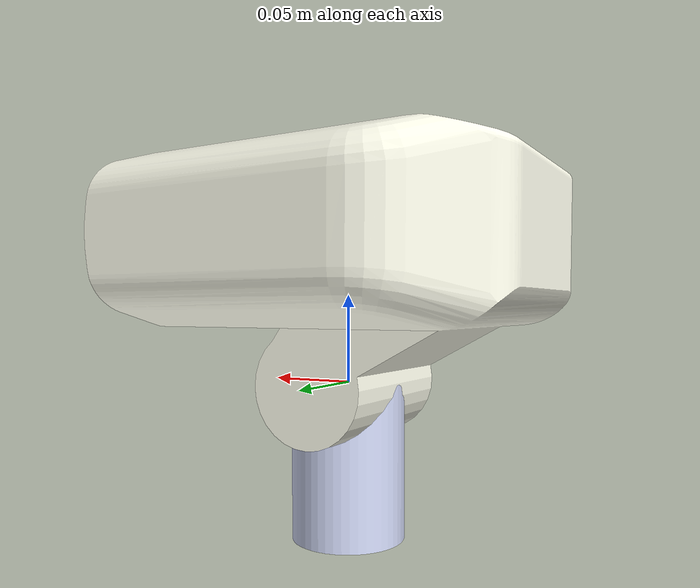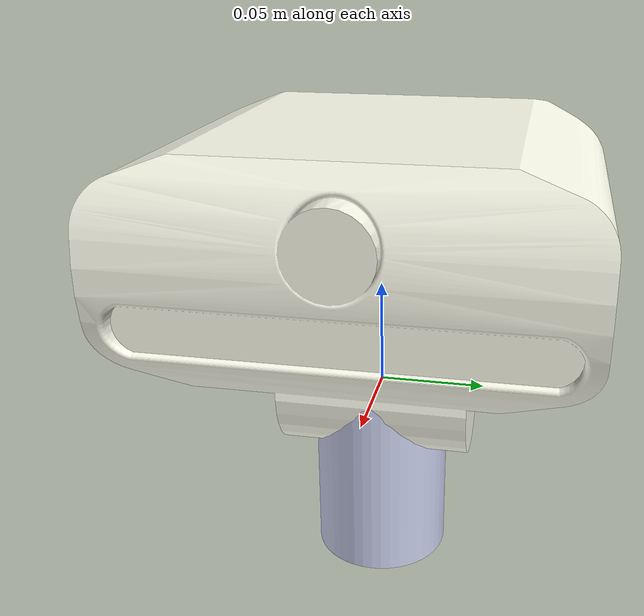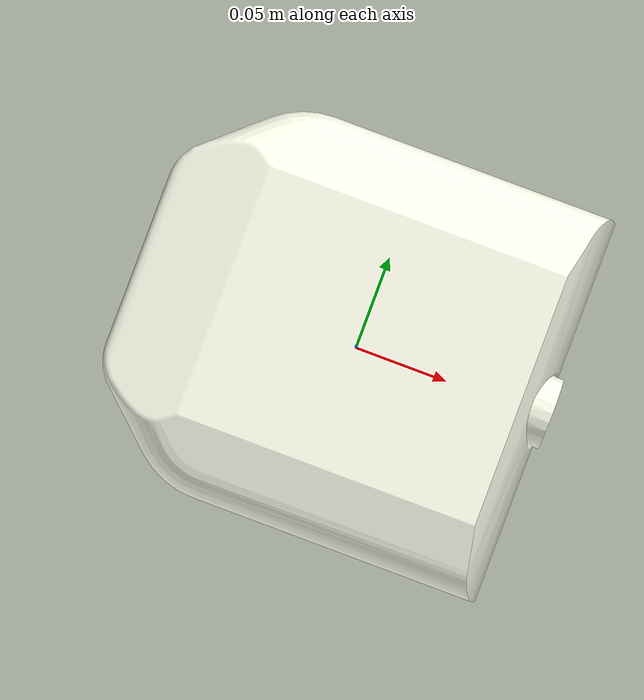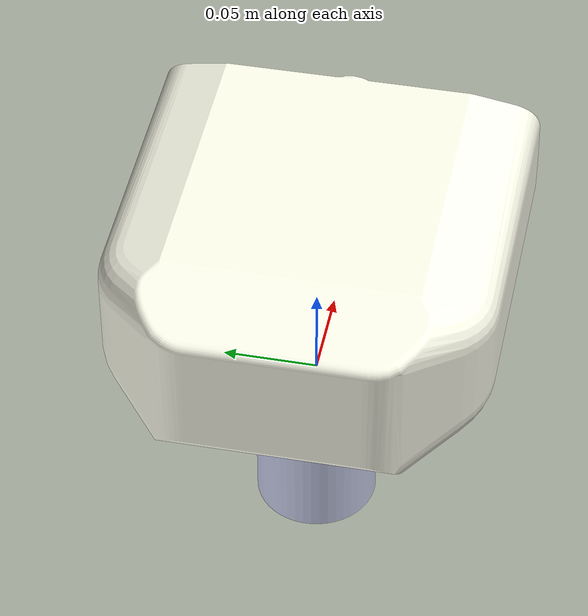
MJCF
<?xml version="1.0"?>
<mujoco model="TEO_head">

    <!-- Define los activos -->
    <asset>
        <!-- Representación visual del Axial Neck -->
        <mesh name="AxialNeck_visual" file="meshes/visual/AxialNeck.stl"/>
        <!-- Colisión del Axial Neck -->
        <mesh name="AxialNeck_collision" file="meshes/collision/AxialNeck.stl"/>

        <!-- Representación visual del Frontal Neck -->
        <mesh name="FrontalNeck_visual" file="meshes/visual/FrontalNeck.stl"/>
        <!-- Colisión del Frontal Neck -->
        <mesh name="FrontalNeck_collision" file="meshes/collision/FrontalNeck.stl"/>
    </asset>

    <!-- Define el cuerpo -->
    <worldbody>
        <body name="TEO_head">
            <body name="AxialNeck_link" pos="0 0 0">

                <!-- Define las propiedades del cuerpo -->
                <inertial pos="0.000302 0.000193 -0.0452" mass="1" diaginertia="0.000939063 0.000939063 0.000528125"/>

                <!-- Visualización del cuerpo -->
                <geom name="AxialNeck_visual_geom" type="mesh" mesh="AxialNeck_visual" rgba="0.792157 0.819608 0.933333 1"/>

                <!-- Colisión del cuerpo -->
                <geom name="AxialNeck_collision_geom" type="mesh" mesh="AxialNeck_collision" conaffinity="1" condim="3" friction="0.7"/>

                <!-- Define la articulación -->
                <joint name="AxialNeck" type="hinge" pos="0 0 0" axis="0 0 1" limited="true" range="-1.22 1.22" damping="0.001"/>

            </body>

            <body name="FrontalNeck_link" pos="0 0 0">

                <!-- Define las propiedades del cuerpo -->
                <inertial pos="-0.002729 -0.000086 0.067027" mass="2" diaginertia="0.007599322 0.008325273 0.011403464"/>

                <!-- Visualización del cuerpo -->
                <geom name="FrontalNeck_visual_geom" type="mesh" mesh="FrontalNeck_visual" rgba="1 1 0.933333 1"/>

                <!-- Colisión del cuerpo -->
                <geom name="FrontalNeck_collision_geom" type="mesh" mesh="FrontalNeck_collision" conaffinity="1" condim="3" friction="0.7"/>

                <!-- Define la articulación -->
                <joint name="FrontalNeck" type="hinge" pos="0 0 0" axis="0 1 0" limited="true" range="-0.51 0.51" damping="0.001"/>

            </body>
        </body>

    </worldbody>

    <!-- Define el actuador -->
    <actuator>
        <motor joint="FrontalNeck"/>
    </actuator>

</mujoco>
